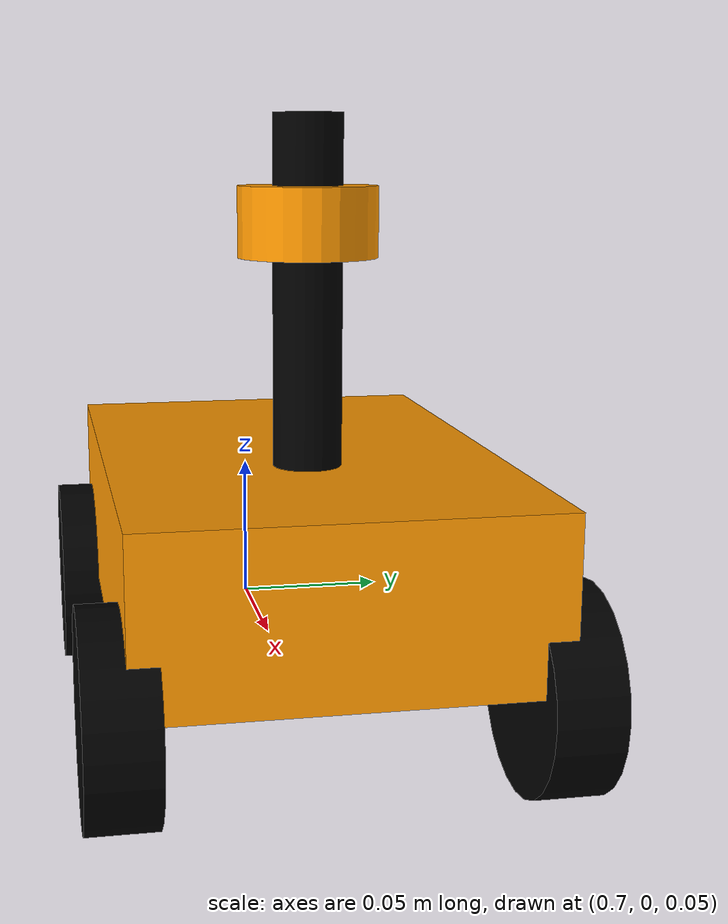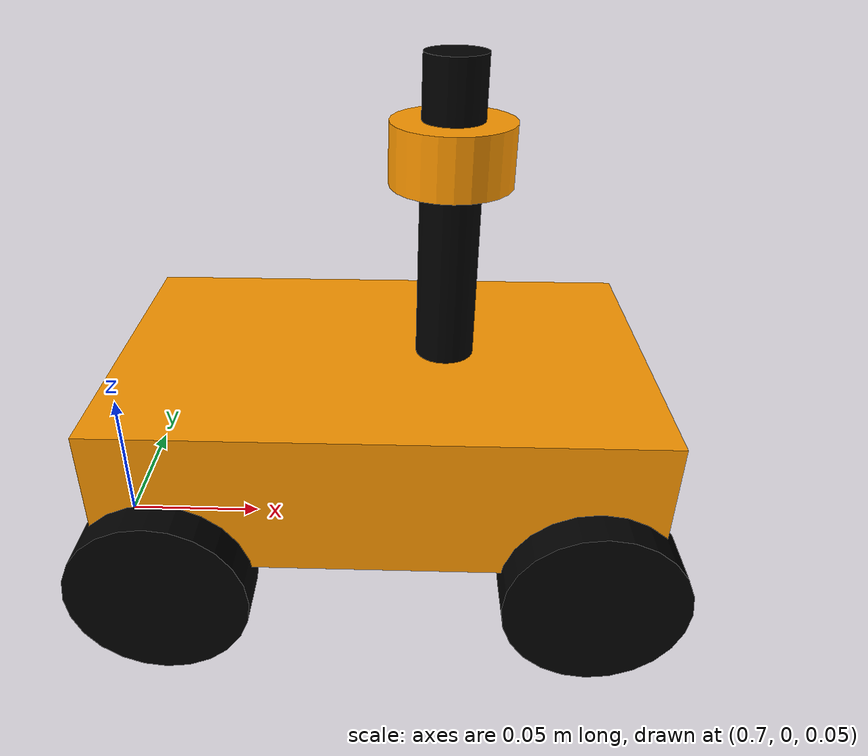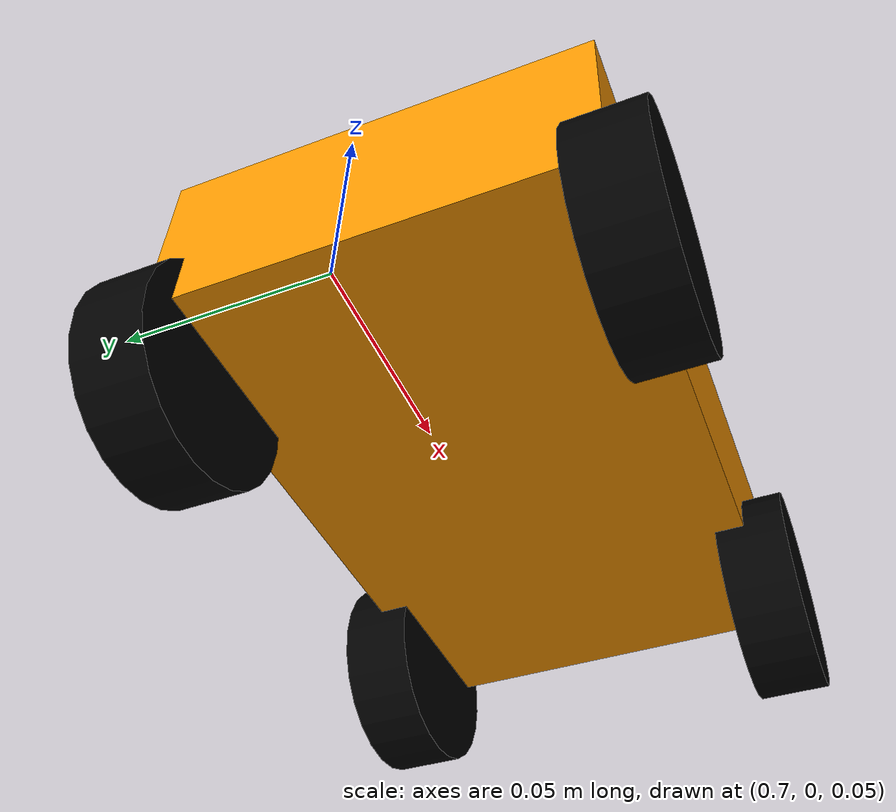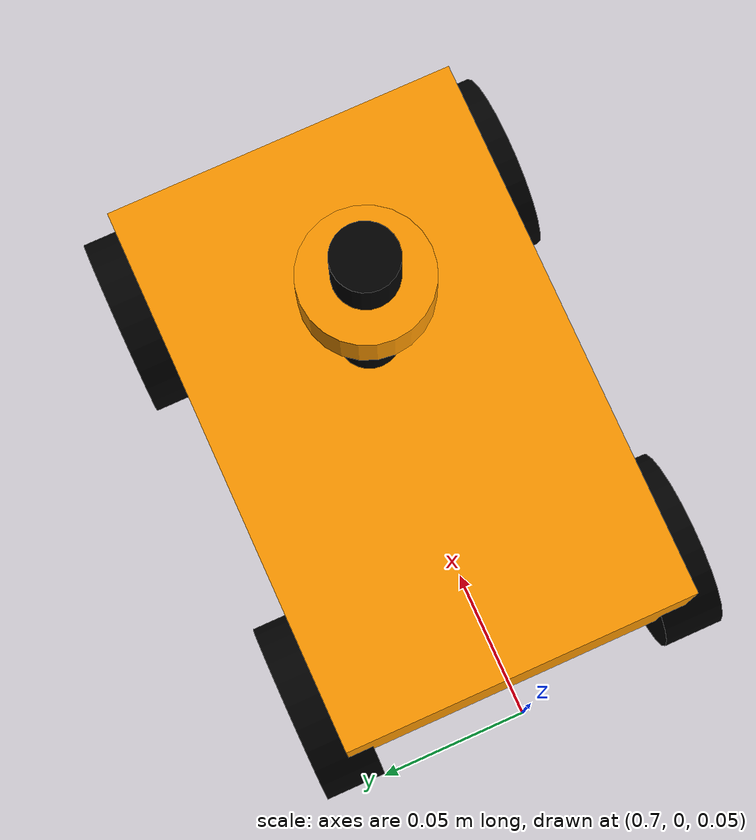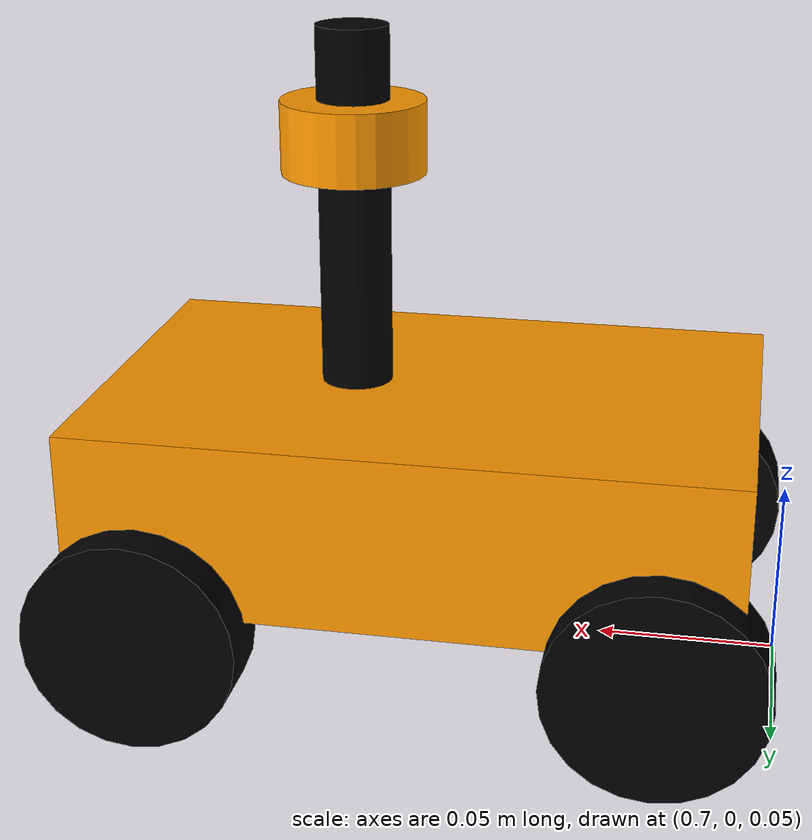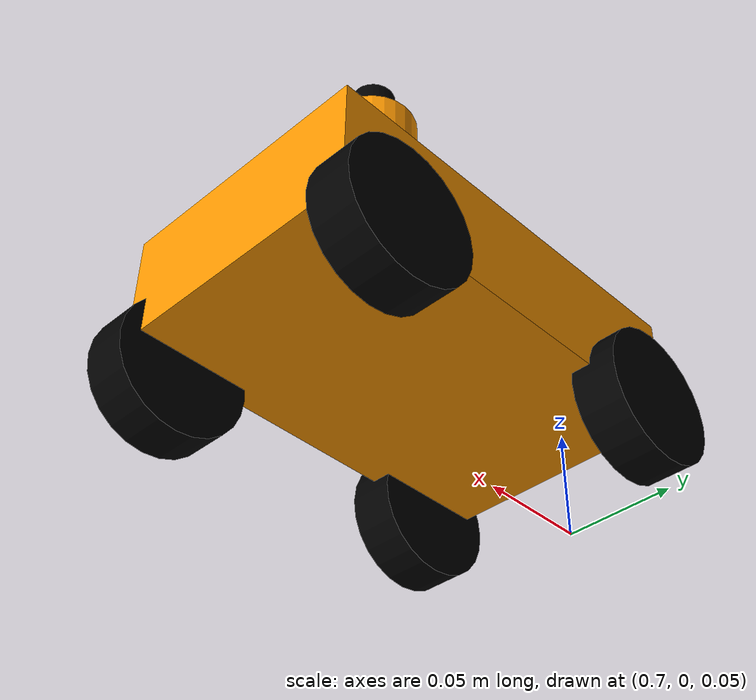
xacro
<?xml version="1.0"?>
<robot name="ackermann_drive" xmlns:xacro="http://ros.org/wiki/xacro">
    <material name="Black">
        <color rgba="0 0 0 1" />
    </material>
    <material name="Grey">
        <color rgba="0.8 0.8 0.8 1" />
    </material>
    <material name="Orange">
        <color rgba="1 0.6 0 1" />
    </material>
    <material name="White">
        <color rgba="1 1 1 1" />
    </material>

    <!-- Define robot constants -->
    <xacro:property name="base_width" value="0.117"/>
    <xacro:property name="base_length" value="0.183"/>
    <xacro:property name="base_height" value="0.05"/>
    <xacro:property name="base_mass" value="120"/>

    <xacro:property name="wheel_radius" value="0.03"/>
    <xacro:property name="wheel_width" value="0.02"/>
    <xacro:property name="wheel_mass" value="11"/>

    <xacro:property name="wheel_ygap" value="0.025"/>
    <xacro:property name="wheel_zoff" value="0.05"/>
    <xacro:property name="wheel_xoff" value="0.12"/>

    <xacro:arg name="sim_mode" default="false"/>

      <xacro:macro name="inertial_cylinder" params="mass length radius *origin">
        <inertial>
            <xacro:insert_block name="origin"/>
            <mass value="${mass}" />
            <inertia ixx="${(1/12) * mass * (3*radius*radius + length*length)}" ixy="0.0" ixz="0.0"
                    iyy="${(1/12) * mass * (3*radius*radius + length*length)}" iyz="0.0"
                    izz="${(1/2) * mass * (radius*radius)}" />
        </inertial>
    </xacro:macro>

    <link name="base_link" />

    <joint name="base_footprint_joint" type="fixed">
        <parent link="base_link"/>
        <child link="base_footprint"/>
        <origin xyz="0 0 0" rpy="0 0 0"/>
    </joint>

     <link name="base_footprint">
    </link>

    <!-- LIDAR   -->
     <joint name="laser_joint" type="fixed">
        <parent link="chassis"/>
        <child link="laser_frame"/>
        <origin xyz="0.022 0 0.095" rpy="0 0 0"/>
    </joint>

    <link name="laser_frame">
        <visual>
            <geometry>
                <cylinder radius="0.02" length="0.02"/>
            </geometry>
            <material name="Orange"/>
        </visual>
        <visual>
            <origin xyz="0 0 -0.02"/>
            <geometry>
                <cylinder radius="0.01" length="0.1"/>
            </geometry>
            <material name="Black"/>
        </visual>
        <collision>
            <geometry>
                <cylinder radius="0.02" length="0.02"/>
            </geometry>
        </collision>
        <xacro:inertial_cylinder mass="0.1" length="0.02" radius="0.02">
            <origin xyz="0 0 0" rpy="0 0 0"/>
        </xacro:inertial_cylinder>
    </link>

    <gazebo reference="laser_frame">
        <material>Gazebo/Red</material>

        <sensor name="laser" type="gpu_lidar">
            <pose> 0 0 0 0 0 0 </pose>
            <visualize>false</visualize>
            <update_rate>10</update_rate>
            <lidar>
                <scan>
                    <horizontal>
                        <samples>360</samples>
                        <min_angle>-3.14</min_angle>
                        <max_angle>3.14</max_angle>
                    </horizontal>
                </scan>
                <range>
                    <min>0.3</min>
                    <max>12</max>
                </range>
            </lidar>
           <topic>scan</topic>
            <gz_frame_id>laser_frame</gz_frame_id>
        </sensor>
    </gazebo>

    <!-- Chassis -->
    <link name="chassis">
        <collision>
            <origin xyz="0 0 0" rpy="0 0 0" />
            <geometry>
                <box size="${base_length} ${base_width} ${base_height}" />
            </geometry>
        </collision>

        <visual>
            <origin xyz="0 0 0" rpy="0 0 0" />
            <geometry>
                <box size="${base_length} ${base_width} ${base_height}" />
            </geometry>
            <material name="Orange" />
        </visual>

        <inertial>
            <origin xyz="0 0 0" rpy="0 0 0" />
            <mass value="${base_mass}" />
            <inertia ixx="${1/12 * base_mass * (base_height**2 + base_length ** 2)}" ixy="0.0" ixz="0.0"
            iyy="${1/12 * base_mass * (base_height ** 2 + base_width ** 2)}" iyz="0.0"
            izz="${1/12 * base_mass * (base_width ** 2 + base_length ** 2)}" />
        </inertial>
    </link>

    <joint name="chassis_joint" type="fixed">
        <origin xyz="0.8 0 0.1" rpy="0 0 0" />
        <parent link="base_link" />
        <child link="chassis" />
    </joint>

    <!-- rear left wheel Link -->
    <link name="rear_left_wheel">
        <collision>
            <geometry>
                <cylinder length="${wheel_width}" radius="${wheel_radius}" />
            </geometry>
        </collision>
        <visual>
            <geometry>
                <cylinder length="${wheel_width}" radius="${wheel_radius}" />
            </geometry>
            <material name="Black" />
        </visual>

        <xacro:inertial_cylinder mass="${wheel_mass}" length="${wheel_width}" radius="${wheel_radius}">
            <origin xyz="0 0 0" rpy="0 0 0"/>
        </xacro:inertial_cylinder>
    </link>

    <joint name="rear_left_wheel_joint" type="continuous">
        <origin xyz="-0.07 0.06 -0.03" rpy="-1.57 0 0" />
        <parent link="chassis" />
        <child link="rear_left_wheel" />
        <axis xyz="0 0 1" />
        <dynamics damping="0.02" />
    </joint>

    <!-- rear right wheel Link -->
    <link name="rear_right_wheel">
        <collision>
            <geometry>
                <cylinder length="${wheel_width}" radius="${wheel_radius}" />
            </geometry>
        </collision>
        <visual>
            <geometry>
                <cylinder length="${wheel_width}" radius="${wheel_radius}" />
            </geometry>
            <material name="Black" />
        </visual>

        <xacro:inertial_cylinder mass="${wheel_mass}" length="${wheel_width}" radius="${wheel_radius}">
            <origin xyz="0 0 0" rpy="0 0 0"/>
        </xacro:inertial_cylinder>
    </link>

    <joint name="rear_right_wheel_joint" type="continuous">
        <origin xyz="-0.07 -0.06 -0.03" rpy="-1.57 0 0" />
        <parent link="chassis" />
        <child link="rear_right_wheel" />
        <axis xyz="0 0 1" />
        <dynamics damping="0.02" />
    </joint>

    <link name="left_wheel_steering">
        <inertial>
            <mass value="0.1"/>
            <inertia ixx="0.26" ixy="0.0" ixz="0.0" iyy="0.26" iyz="0.0" izz="0.51" />
        </inertial>
    </link>

    <joint name="left_wheel_steering_joint" type="revolute">
        <origin xyz="0.07 -0.06 -0.03" rpy="1.57 0 0" />
        <parent link="chassis" />
        <child link="left_wheel_steering" />
        <axis xyz="0 1 0" />
        <dynamics damping="0.02" />
        <limit effort="10000.0" lower="-0.57" upper="0.57" velocity="30"/>
    </joint>

    <link name="right_wheel_steering">
        <inertial>
           <mass value="${wheel_mass}" />
            <inertia ixx="${1/12*wheel_mass*(3*wheel_radius**2+wheel_width)}"
            ixy="0.0" ixz="0.0"
            iyy="${1/12*wheel_mass*(3*wheel_radius**2+wheel_width)}"  iyz="0.0"
            izz="${1/12*wheel_mass*wheel_radius**2}" />
        </inertial>
    </link>

    <joint name="right_wheel_steering_joint" type="revolute">
        <origin xyz="0.07 0.06 -0.03" rpy="1.57 0 0" />
        <parent link="chassis" />
        <child link="right_wheel_steering" />
        <axis xyz="0 1 0" />
        <dynamics damping="0.02" />
        <limit effort="10000.0" lower="-0.57" upper="0.57" velocity="30"/>
    </joint>

    <link name="front_left_wheel">
        <collision>
            <geometry>
                <cylinder length="${wheel_width}" radius="${wheel_radius}" />
            </geometry>
        </collision>
        <visual>
            <geometry>
                <cylinder length="${wheel_width}" radius="${wheel_radius}" />
            </geometry>
            <material name="Black" />
        </visual>
        <xacro:inertial_cylinder mass="${wheel_mass}" length="${wheel_width}" radius="${wheel_radius}">
            <origin xyz="0 0 0" rpy="0 0 0"/>
        </xacro:inertial_cylinder>
    </link>

    <joint name="front_left_wheel_joint" type="continuous">
        <origin xyz="0 0 0" rpy="0 0 0" />
        <parent link="left_wheel_steering" />
        <child link="front_left_wheel" />
        <axis xyz="0 0 1" />
        <dynamics damping="0.02" />
    </joint>

    <link name="front_right_wheel">
        <collision>
            <geometry>
                <cylinder length="${wheel_width}" radius="${wheel_radius}" />
            </geometry>
        </collision>
        <visual>
            <geometry>
                <cylinder length="${wheel_width}" radius="${wheel_radius}"/>
            </geometry>
            <material name="Black" />
        </visual>
        <xacro:inertial_cylinder mass="${wheel_mass}" length="${wheel_width}" radius="${wheel_radius}">
            <origin xyz="0 0 0" rpy="0 0 0"/>
        </xacro:inertial_cylinder>
    </link>

    <joint name="front_right_wheel_joint" type="continuous">
        <origin xyz="0 0 0" rpy="0 0 0" />
        <parent link="right_wheel_steering" />
        <child link="front_right_wheel" />
        <axis xyz="0 0 1" />
        <dynamics damping="0.02" />
    </joint>

    <xacro:unless value="$(arg sim_mode)">

        <ros2_control name="OnyCroit" type="system">
        <hardware>
            <plugin>ackerman_robot/DiffDriveArduinoHardware</plugin>
            <param name="front_left_wheel_name">left_wheel_steering_joint</param>
            <param name="front_right_wheel_name">right_wheel_steering_joint</param>
            <param name="rear_left_wheel_name">rear_left_wheel_joint</param>
            <param name="rear_right_wheel_name">rear_right_wheel_joint</param>
            <param name="loop_rate">30</param>
            <param name="device">/dev/ttyACM0</param>
            <param name="baud_rate">115200</param>
            <param name="timeout_ms">1000</param>
            <param name="enc_counts_per_rev">3436</param>
            <param name="pid_p">20</param>
            <param name="pid_d">12</param>
            <param name="pid_i">0</param>
            <param name="pid_o">50</param>
        </hardware>

        <joint name="rear_left_wheel_joint">
        <command_interface name="velocity" />
        <state_interface name="velocity" />
        <state_interface name="position" />
        </joint>

            <joint name="rear_right_wheel_joint">
            <command_interface name="velocity" />
            <state_interface name="velocity" />
            <state_interface name="position" />
            </joint>

            <joint name="left_wheel_steering_joint">
            <command_interface name="position" />
            <state_interface name="position" />
            </joint>

            <joint name="right_wheel_steering_joint">
            <command_interface name="position" />
            <state_interface name="position" />
            </joint>
        </ros2_control>
    </xacro:unless>

    <xacro:if value="$(arg sim_mode)">
        <ros2_control name="GazeboSystem" type="system">
            <hardware>
            <plugin>gz_ros2_control/GazeboSimSystem</plugin>
            </hardware>
            <joint name="rear_left_wheel_joint">
                <command_interface name="velocity" />
                <state_interface name="velocity" />
                <state_interface name="position" />
            </joint>
            <joint name="rear_right_wheel_joint">
                <command_interface name="velocity" />
                <state_interface name="velocity" />
                <state_interface name="position" />
            </joint>
                <joint name="left_wheel_steering_joint">
                <command_interface name="position" />
                <state_interface name="position" />
                <state_interface name="velocity" />
            </joint>
            <joint name="right_wheel_steering_joint">
                <command_interface name="position" />
                <state_interface name="position" />
                <state_interface name="velocity" />
            </joint>
        </ros2_control>

        <gazebo>
            <plugin filename="gz_ros2_control-system" name="gz_ros2_control::GazeboSimROS2ControlPlugin">
                <parameters>$(find ackerman_robot)/config/ackermann_controller.yaml</parameters>
            </plugin>
        </gazebo>
    </xacro:if>
</robot>
